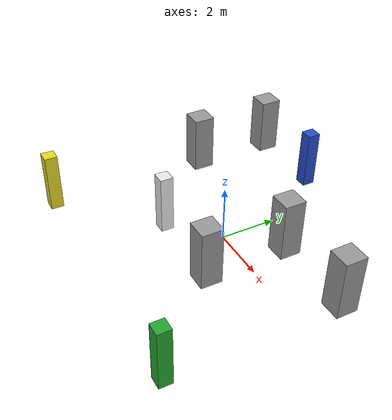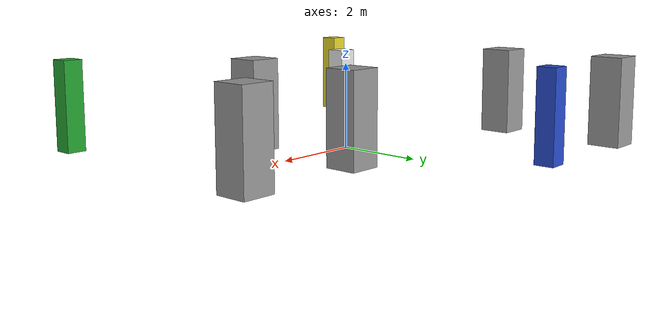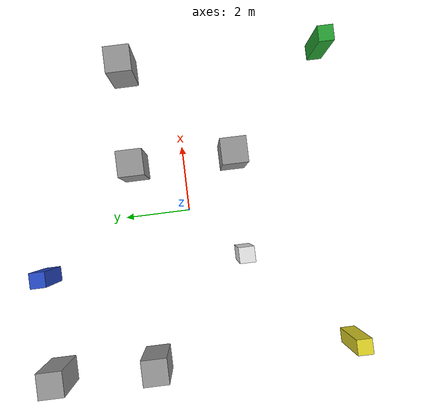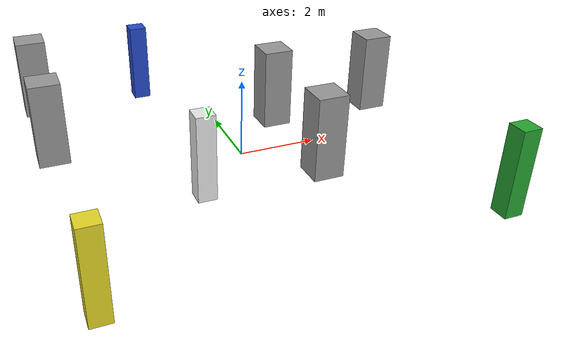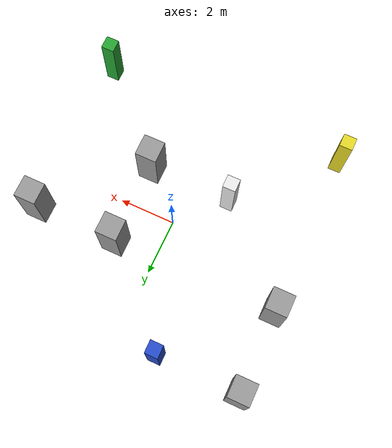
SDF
<?xml version="1.0"?>
<sdf version="1.7">
  <model name="sample_course_1">
    <include>
      <uri>model://everblock_yellow</uri>
      <name>block0</name>
      <pose>-4.5 -4.5 0 0 0 0</pose>
    </include>
    <include>
      <uri>model://everblock_grey</uri>
      <name>block2</name>
      <pose>-4.5 1.5 0 0 0 0</pose>
    </include>
    <include>
      <uri>model://everblock_grey</uri>
      <name>block3</name>
      <pose>-4.5 4.5 0 0 0 0</pose>
    </include>
    <include>
      <uri>model://everblock_white</uri>
      <name>block5</name>
      <pose>-1.5 -1.5 0 0 0 0</pose>
    </include>
    <include>
      <uri>model://everblock_blue</uri>
      <name>block7</name>
      <pose>-1.5 4.5 0 0 0 0</pose>
    </include>
    <include>
      <uri>model://everblock_grey</uri>
      <name>block9</name>
      <pose>1.5 -1.5 0 0 0 0</pose>
    </include>
    <include>
      <uri>model://everblock_grey</uri>
      <name>block10</name>
      <pose>1.5 1.5 0 0 0 0</pose>
    </include>
    <include>
      <uri>model://everblock_green</uri>
      <name>block12</name>
      <pose>4.5 -4.5 0 0 0 0</pose>
    </include>
    <include>
      <uri>model://everblock_grey</uri>
      <name>block14</name>
      <pose>4.5 1.5 0 0 0 0</pose>
    </include></model>
</sdf>

<!-- vim: set et ft=xml fenc=utf-8 ff=unix sts=0 sw=2 ts=2 : -->

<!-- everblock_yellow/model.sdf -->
<sdf version="1.7">
  <model name="everblock_yellow">
    <static>true</static>
    <link name="block">
      <pose>0 0 1.0668 0 0 0</pose>
      <collision name="collision">
        <geometry>
          <box>
            <size>0.4572 0.4572 2.1336</size>
          </box>
        </geometry>
      </collision>
      <visual name="visual">
        <geometry>
          <mesh>
            <uri>model://everblock_yellow/meshes/block.dae</uri>
            <scale>0.4572 0.4572 2.1336</scale>
          </mesh>
	  	</geometry>
        <material>
          <script>
            <uri>model://everblock_yellow/materials/scripts</uri>
            <uri>model://everblock_yellow/materials/textures</uri>
            <name>BlockYellow</name>
          </script>
        </material>
      </visual>
    </link>
  </model>
</sdf>

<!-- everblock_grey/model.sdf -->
<sdf version="1.7">
  <model name="everblock_grey">
    <static>true</static>
    <link name="block">
      <pose>0 0 1.0668 0 0 0</pose>
      <collision name="collision">
        <geometry>
          <box>
            <size>0.762 0.762 2.1336</size>
          </box>
        </geometry>
      </collision>
      <visual name="visual">
        <geometry>
          <mesh>
            <uri>model://everblock_grey/meshes/block.dae</uri>
            <scale>0.762 0.762 2.1336</scale>
          </mesh>
	  	</geometry>
        <material>
          <script>
            <uri>model://everblock_grey/materials/scripts</uri>
            <uri>model://everblock_grey/materials/textures</uri>
            <name>BlockGrey</name>
          </script>
        </material>
      </visual>
    </link>
  </model>
</sdf>

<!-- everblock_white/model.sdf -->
<sdf version="1.7">
  <model name="everblock_white">
    <static>true</static>
    <link name="block">
      <pose>0 0 1.0668 0 0 0</pose>
      <collision name="collision">
        <geometry>
          <box>
            <size>0.4572 0.4572 2.1336</size>
          </box>
        </geometry>
      </collision>
      <visual name="visual">
        <geometry>
          <mesh>
            <uri>model://everblock_white/meshes/block.dae</uri>
            <scale>0.4572 0.4572 2.1336</scale>
          </mesh>
	  	</geometry>
        <material>
          <script>
            <uri>model://everblock_white/materials/scripts</uri>
            <uri>model://everblock_white/materials/textures</uri>
            <name>BlockWhite</name>
          </script>
        </material>
      </visual>
    </link>
  </model>
</sdf>

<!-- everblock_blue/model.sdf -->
<sdf version="1.7">
  <model name="everblock_blue">
    <static>true</static>
    <link name="block">
      <pose>0 0 1.0668 0 0 0</pose>
      <collision name="collision">
        <geometry>
          <box>
            <size>0.4572 0.4572 2.1336</size>
          </box>
        </geometry>
      </collision>
      <visual name="visual">
        <geometry>
          <mesh>
            <uri>model://everblock_blue/meshes/block.dae</uri>
            <scale>0.4572 0.4572 2.1336</scale>
          </mesh>
	  	</geometry>
        <material>
          <script>
            <uri>model://everblock_blue/materials/scripts</uri>
            <uri>model://everblock_blue/materials/textures</uri>
            <name>BlockBlue</name>
          </script>
        </material>
      </visual>
    </link>
  </model>
</sdf>

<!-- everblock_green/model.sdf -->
<sdf version="1.7">
  <model name="everblock_green">
    <static>true</static>
    <link name="block">
      <pose>0 0 1.0668 0 0 0</pose>
      <collision name="collision">
        <geometry>
          <box>
            <size>0.4572 0.4572 2.1336</size>
          </box>
        </geometry>
      </collision>
      <visual name="visual">
        <geometry>
          <mesh>
            <uri>model://everblock_green/meshes/block.dae</uri>
            <scale>0.4572 0.4572 2.1336</scale>
          </mesh>
	  	</geometry>
        <material>
          <script>
            <uri>model://everblock_green/materials/scripts</uri>
            <uri>model://everblock_green/materials/textures</uri>
            <name>BlockGreen</name>
          </script>
        </material>
      </visual>
    </link>
  </model>
</sdf>
